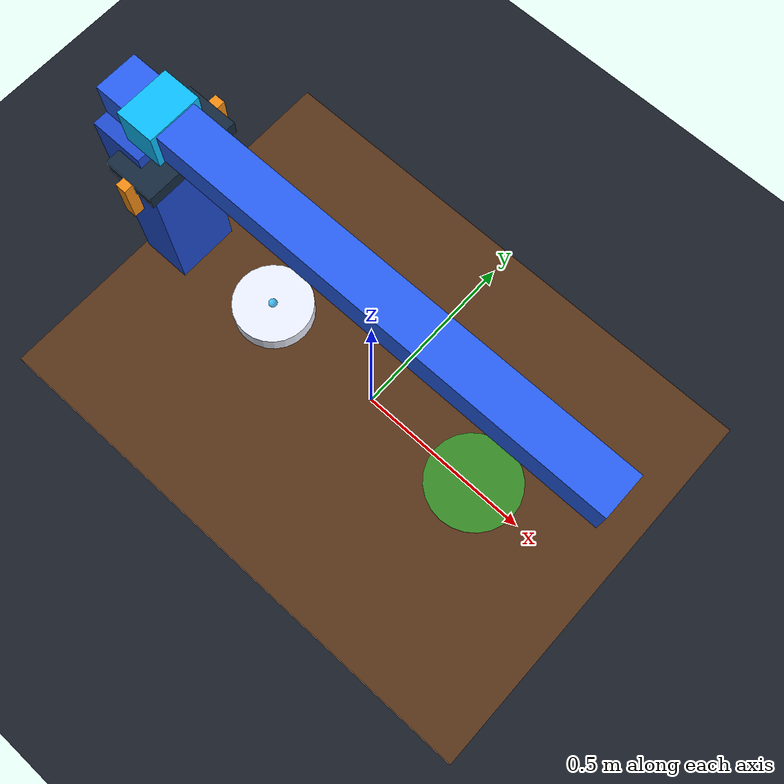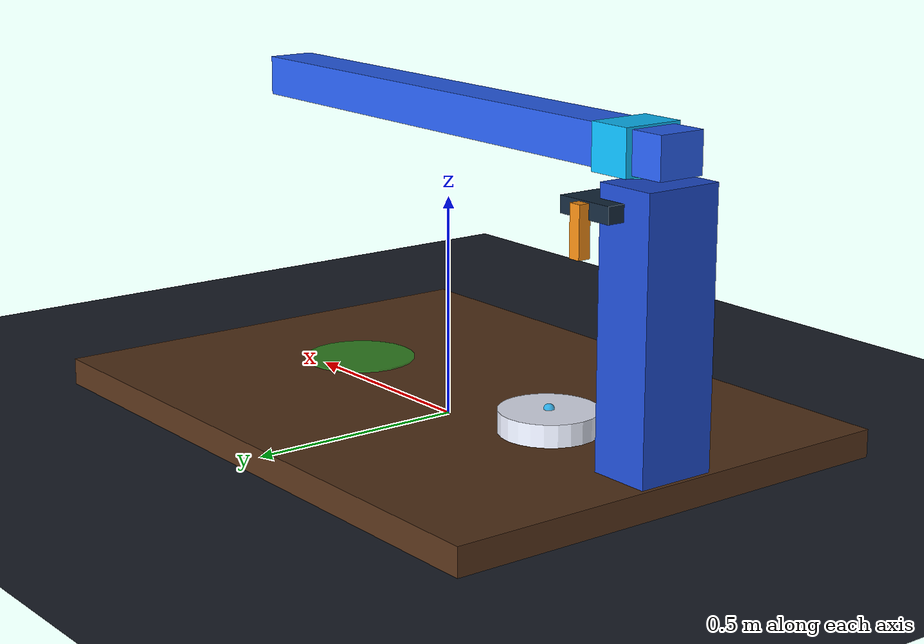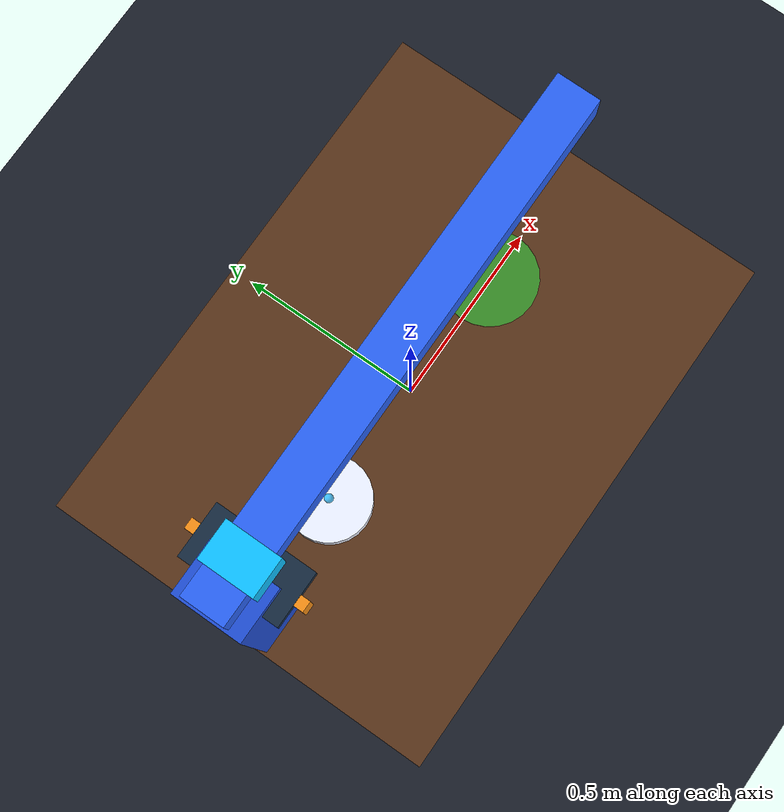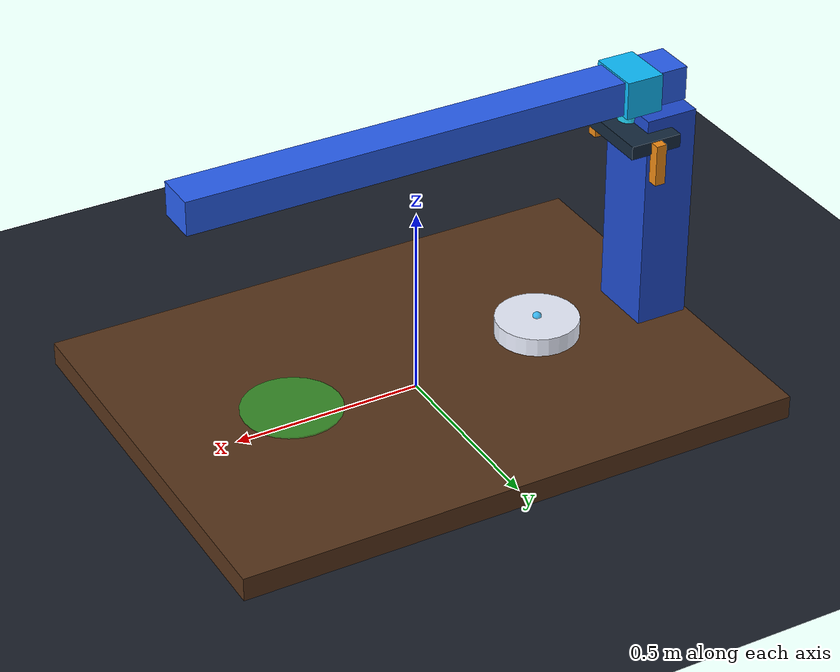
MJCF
<mujoco model="champ_tableops_milestone2">
  <compiler angle="radian" autolimits="true"/>
  <option timestep="0.002" gravity="0 0 -9.81"/>

  <default>
    <joint damping="25" armature="0.02"/>
    <geom friction="0.9 0.05 0.01"/>
  </default>

  <worldbody>
    <light pos="0 -0.5 2.5" dir="0 0 -1" diffuse="0.9 0.9 0.9"/>
    <camera name="demo" pos="0 -2.0 1.15" xyaxes="1 0 0 0 0.48 0.88"/>

    <geom
      name="floor"
      type="plane"
      pos="0 0 -0.01"
      size="2 2 0.1"
      rgba="0.10 0.12 0.16 1"/>

    <geom
      name="table"
      type="box"
      pos="0 0 0"
      size="0.75 0.55 0.05"
      rgba="0.34 0.20 0.10 1"/>

    <site
      name="target"
      type="cylinder"
      pos="0.35 0 0.052"
      size="0.13 0.002"
      rgba="0.1 1 0.25 0.45"/>

    <body name="plate" pos="-0.35 0 0.075">
      <freejoint/>
      <geom
        name="plate_geom"
        type="cylinder"
        size="0.11 0.025"
        mass="0.25"
        rgba="0.92 0.94 1 1"/>
      <site
        name="plate_grasp_site"
        pos="0 0 0.025"
        size="0.012"
        rgba="0 0.7 1 0.7"/>
    </body>

    <!-- Static support makes the Cartesian manipulator visually read as a robot. -->
    <geom
      name="robot_pedestal"
      type="box"
      pos="-0.67 0 0.32"
      size="0.07 0.09 0.32"
      rgba="0.12 0.30 0.82 1"
      contype="0"
      conaffinity="0"/>
    <geom
      name="robot_beam"
      type="box"
      pos="-0.05 0 0.70"
      size="0.68 0.055 0.045"
      rgba="0.16 0.38 0.95 1"
      contype="0"
      conaffinity="0"/>

    <body name="robot_x" pos="-0.60 0 0.70" gravcomp="1">
      <joint name="slide_x" type="slide" axis="1 0 0" range="0 1.15"/>
      <geom
        type="box"
        size="0.05 0.07 0.05"
        rgba="0.05 0.75 1 1"
        contype="0"
        conaffinity="0"/>

      <body name="robot_y" gravcomp="1">
        <joint name="slide_y" type="slide" axis="0 1 0" range="-0.35 0.35"/>
        <geom
          type="box"
          size="0.045 0.055 0.045"
          rgba="0.05 0.65 0.9 1"
          contype="0"
          conaffinity="0"/>

        <body name="gripper" gravcomp="1">
          <joint name="slide_z" type="slide" axis="0 0 1" range="-0.52 0" damping="55"/>
          <geom
            type="capsule"
            fromto="0 0 0 0 0 -0.10"
            size="0.028"
            rgba="0.12 0.82 0.95 1"
            contype="0"
            conaffinity="0"/>
          <geom
            type="box"
            pos="0 0 -0.11"
            size="0.07 0.13 0.018"
            rgba="0.08 0.16 0.24 1"
            contype="0"
            conaffinity="0"/>

          <body name="left_finger" pos="0 -0.14 -0.15" gravcomp="1">
            <joint name="left_finger_joint" type="slide" axis="0 1 0" range="0 0.05" damping="8"/>
            <geom
              type="box"
              size="0.014 0.014 0.055"
              rgba="0.95 0.55 0.08 1"
              contype="0"
              conaffinity="0"/>
          </body>

          <body name="right_finger" pos="0 0.14 -0.15" gravcomp="1">
            <joint name="right_finger_joint" type="slide" axis="0 -1 0" range="0 0.05" damping="8"/>
            <geom
              type="box"
              size="0.014 0.014 0.055"
              rgba="0.95 0.55 0.08 1"
              contype="0"
              conaffinity="0"/>
          </body>

          <site
            name="grasp_site"
            pos="0 0 -0.155"
            size="0.015"
            rgba="1 0.2 0.1 0.8"/>
        </body>
      </body>
    </body>
  </worldbody>

  <equality>
    <!-- Runtime grasp latch. site-to-site weld is enabled only after approach. -->
    <weld
      name="grasp_weld"
      site1="grasp_site"
      site2="plate_grasp_site"
      active="false"
      solref="0.01 1"/>
  </equality>

  <actuator>
    <position name="x_position" joint="slide_x" kp="350" ctrlrange="0 1.15" ctrllimited="true"/>
    <position name="y_position" joint="slide_y" kp="350" ctrlrange="-0.35 0.35" ctrllimited="true"/>
    <position name="z_position" joint="slide_z" kp="500" ctrlrange="-0.52 0" ctrllimited="true"/>
    <position name="left_grip" joint="left_finger_joint" kp="120" ctrlrange="0 0.05" ctrllimited="true"/>
    <position name="right_grip" joint="right_finger_joint" kp="120" ctrlrange="0 0.05" ctrllimited="true"/>
  </actuator>
</mujoco>
